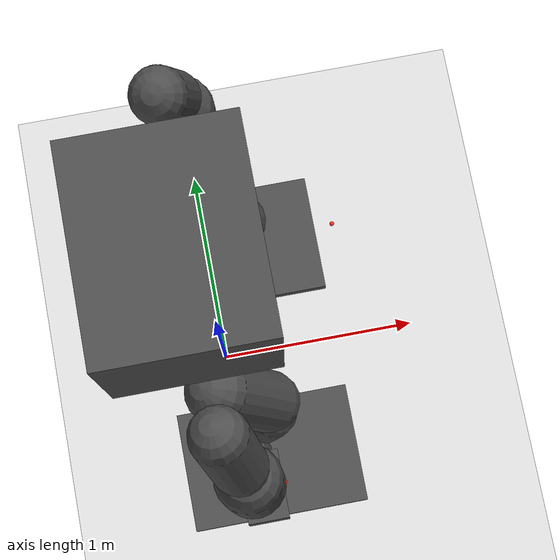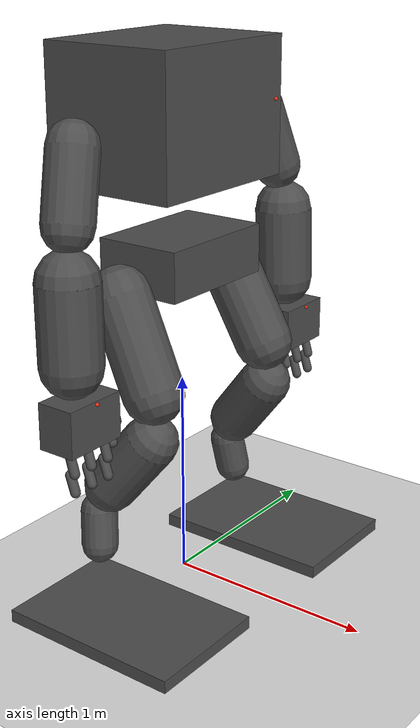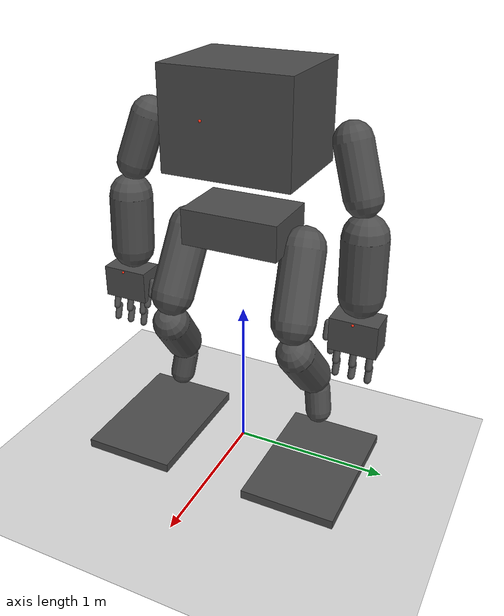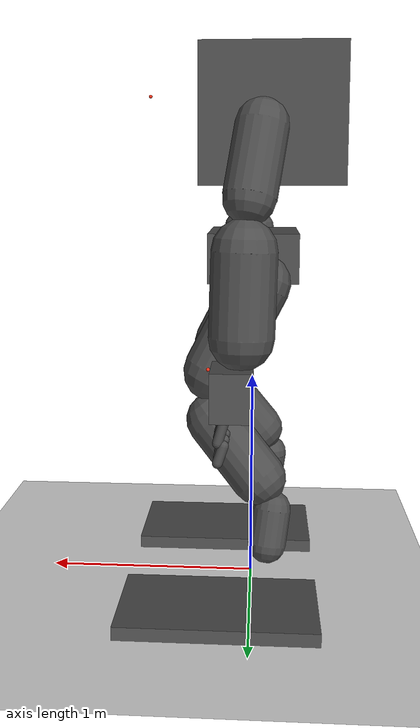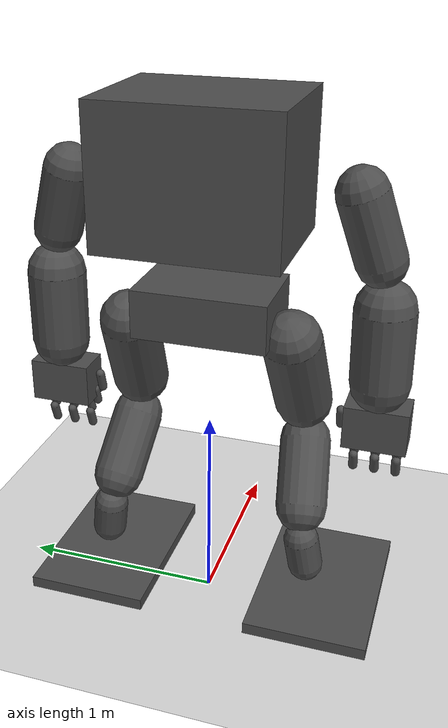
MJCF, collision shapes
<mujoco model="gorilla_layout_b">
  <compiler angle="radian" autolimits="true" inertiafromgeom="false" meshdir="assets" />
  <option timestep=".002" gravity="0 0 -9.81" integrator="implicitfast" iterations="100" tolerance="1e-10" />
  <default>
    <joint limited="true" damping="2" armature="0" />
    <geom friction=".7 .005 .0001" condim="3" solref=".02 1" solimp=".9 .95 .001" />
  </default>
  <asset>
    <mesh name="ivory_chest_wedge" file="ivory_chest_wedge.obj" />
    <mesh name="ivory_back_carapace" file="ivory_back_carapace.obj" />
    <mesh name="torso_internal_carrier_visual" file="torso_internal_carrier_visual.obj" />
    <mesh name="left_blue_torso_side" file="left_blue_torso_side.obj" />
    <mesh name="left_upper_blue_shoulder_bridge" file="left_upper_blue_shoulder_bridge.obj" />
    <mesh name="left_radiator_gold_frame" file="left_radiator_gold_frame.obj" />
    <mesh name="left_radiator_dark_face" file="left_radiator_dark_face.obj" />
    <mesh name="left_radiator_louver_00" file="left_radiator_louver_00.obj" />
    <mesh name="left_radiator_louver_01" file="left_radiator_louver_01.obj" />
    <mesh name="left_radiator_louver_02" file="left_radiator_louver_02.obj" />
    <mesh name="left_radiator_louver_03" file="left_radiator_louver_03.obj" />
    <mesh name="left_radiator_louver_04" file="left_radiator_louver_04.obj" />
    <mesh name="left_radiator_louver_05" file="left_radiator_louver_05.obj" />
    <mesh name="left_radiator_louver_06" file="left_radiator_louver_06.obj" />
    <mesh name="left_radiator_louver_07" file="left_radiator_louver_07.obj" />
    <mesh name="left_radiator_louver_08" file="left_radiator_louver_08.obj" />
    <mesh name="left_radiator_louver_09" file="left_radiator_louver_09.obj" />
    <mesh name="right_blue_torso_side" file="right_blue_torso_side.obj" />
    <mesh name="right_upper_blue_shoulder_bridge" file="right_upper_blue_shoulder_bridge.obj" />
    <mesh name="right_radiator_gold_frame" file="right_radiator_gold_frame.obj" />
    <mesh name="right_radiator_dark_face" file="right_radiator_dark_face.obj" />
    <mesh name="right_radiator_louver_00" file="right_radiator_louver_00.obj" />
    <mesh name="right_radiator_louver_01" file="right_radiator_louver_01.obj" />
    <mesh name="right_radiator_louver_02" file="right_radiator_louver_02.obj" />
    <mesh name="right_radiator_louver_03" file="right_radiator_louver_03.obj" />
    <mesh name="right_radiator_louver_04" file="right_radiator_louver_04.obj" />
    <mesh name="right_radiator_louver_05" file="right_radiator_louver_05.obj" />
    <mesh name="right_radiator_louver_06" file="right_radiator_louver_06.obj" />
    <mesh name="right_radiator_louver_07" file="right_radiator_louver_07.obj" />
    <mesh name="right_radiator_louver_08" file="right_radiator_louver_08.obj" />
    <mesh name="right_radiator_louver_09" file="right_radiator_louver_09.obj" />
    <mesh name="central_amber_light_rim" file="central_amber_light_rim.obj" />
    <mesh name="central_amber_light" file="central_amber_light.obj" />
    <mesh name="blue_back_service_panel" file="blue_back_service_panel.obj" />
    <mesh name="back_service_latch" file="back_service_latch.obj" />
    <mesh name="back_fastener_n0p125_2p216" file="back_fastener_n0p125_2p216.obj" />
    <mesh name="back_fastener_n0p125_2p487" file="back_fastener_n0p125_2p487.obj" />
    <mesh name="back_fastener_0p125_2p216" file="back_fastener_0p125_2p216.obj" />
    <mesh name="back_fastener_0p125_2p487" file="back_fastener_0p125_2p487.obj" />
    <mesh name="pelvis_dark_carrier" file="pelvis_dark_carrier.obj" />
    <mesh name="saffron_front_pelvis" file="saffron_front_pelvis.obj" />
    <mesh name="pelvis_small_black_latch" file="pelvis_small_black_latch.obj" />
    <mesh name="rear_saffron_pelvis_band" file="rear_saffron_pelvis_band.obj" />
    <mesh name="rear_ivory_sacral_guard" file="rear_ivory_sacral_guard.obj" />
    <mesh name="left_shoulder_housing" file="left_shoulder_housing.obj" />
    <mesh name="left_shoulder_rim_right" file="left_shoulder_rim_right.obj" />
    <mesh name="left_shoulder_rim_left" file="left_shoulder_rim_left.obj" />
    <mesh name="left_ivory_upper_arm" file="left_ivory_upper_arm.obj" />
    <mesh name="left_blue_outer_deltoid" file="left_blue_outer_deltoid.obj" />
    <mesh name="left_deltoid_gold_mark" file="left_deltoid_gold_mark.obj" />
    <mesh name="left_elbow_housing" file="left_elbow_housing.obj" />
    <mesh name="left_elbow_rim_right" file="left_elbow_rim_right.obj" />
    <mesh name="left_elbow_rim_left" file="left_elbow_rim_left.obj" />
    <mesh name="left_blue_forearm" file="left_blue_forearm.obj" />
    <mesh name="left_forearm_small_gold_mark" file="left_forearm_small_gold_mark.obj" />
    <mesh name="left_wrist_housing" file="left_wrist_housing.obj" />
    <mesh name="left_wrist_rim_right" file="left_wrist_rim_right.obj" />
    <mesh name="left_wrist_rim_left" file="left_wrist_rim_left.obj" />
    <mesh name="left_ivory_palm" file="left_ivory_palm.obj" />
    <mesh name="left_finger_1_proximal" file="left_finger_1_proximal.obj" />
    <mesh name="left_finger_1_ivory_pad" file="left_finger_1_ivory_pad.obj" />
    <mesh name="left_finger_1_distal" file="left_finger_1_distal.obj" />
    <mesh name="left_finger_2_proximal" file="left_finger_2_proximal.obj" />
    <mesh name="left_finger_2_ivory_pad" file="left_finger_2_ivory_pad.obj" />
    <mesh name="left_finger_2_distal" file="left_finger_2_distal.obj" />
    <mesh name="left_finger_3_proximal" file="left_finger_3_proximal.obj" />
    <mesh name="left_finger_3_ivory_pad" file="left_finger_3_ivory_pad.obj" />
    <mesh name="left_finger_3_distal" file="left_finger_3_distal.obj" />
    <mesh name="left_thumb_proximal" file="left_thumb_proximal.obj" />
    <mesh name="left_thumb_distal" file="left_thumb_distal.obj" />
    <mesh name="left_hip_housing" file="left_hip_housing.obj" />
    <mesh name="left_hip_rim_right" file="left_hip_rim_right.obj" />
    <mesh name="left_hip_rim_left" file="left_hip_rim_left.obj" />
    <mesh name="left_blue_thigh" file="left_blue_thigh.obj" />
    <mesh name="left_orange_knee_guard" file="left_orange_knee_guard.obj" />
    <mesh name="left_knee_housing" file="left_knee_housing.obj" />
    <mesh name="left_knee_rim_right" file="left_knee_rim_right.obj" />
    <mesh name="left_knee_rim_left" file="left_knee_rim_left.obj" />
    <mesh name="left_blue_middle_shank" file="left_blue_middle_shank.obj" />
    <mesh name="left_fold_housing" file="left_fold_housing.obj" />
    <mesh name="left_fold_rim_right" file="left_fold_rim_right.obj" />
    <mesh name="left_fold_rim_left" file="left_fold_rim_left.obj" />
    <mesh name="left_gray_distal_carrier" file="left_gray_distal_carrier.obj" />
    <mesh name="left_blue_distal_front_guard" file="left_blue_distal_front_guard.obj" />
    <mesh name="left_ankle_housing" file="left_ankle_housing.obj" />
    <mesh name="left_ankle_rim_right" file="left_ankle_rim_right.obj" />
    <mesh name="left_ankle_rim_left" file="left_ankle_rim_left.obj" />
    <mesh name="left_dark_sole" file="left_dark_sole.obj" />
    <mesh name="left_ivory_foot_upper" file="left_ivory_foot_upper.obj" />
    <mesh name="left_dark_rear_heel" file="left_dark_rear_heel.obj" />
    <mesh name="left_ivory_ankle_inst_ep" file="left_ivory_ankle_inst_ep.obj" />
    <mesh name="right_shoulder_housing" file="right_shoulder_housing.obj" />
    <mesh name="right_shoulder_rim_right" file="right_shoulder_rim_right.obj" />
    <mesh name="right_shoulder_rim_left" file="right_shoulder_rim_left.obj" />
    <mesh name="right_ivory_upper_arm" file="right_ivory_upper_arm.obj" />
    <mesh name="right_blue_outer_deltoid" file="right_blue_outer_deltoid.obj" />
    <mesh name="right_deltoid_gold_mark" file="right_deltoid_gold_mark.obj" />
    <mesh name="right_elbow_housing" file="right_elbow_housing.obj" />
    <mesh name="right_elbow_rim_right" file="right_elbow_rim_right.obj" />
    <mesh name="right_elbow_rim_left" file="right_elbow_rim_left.obj" />
    <mesh name="right_blue_forearm" file="right_blue_forearm.obj" />
    <mesh name="right_forearm_small_gold_mark" file="right_forearm_small_gold_mark.obj" />
    <mesh name="right_wrist_housing" file="right_wrist_housing.obj" />
    <mesh name="right_wrist_rim_right" file="right_wrist_rim_right.obj" />
    <mesh name="right_wrist_rim_left" file="right_wrist_rim_left.obj" />
    <mesh name="right_ivory_palm" file="right_ivory_palm.obj" />
    <mesh name="right_finger_1_proximal" file="right_finger_1_proximal.obj" />
    <mesh name="right_finger_1_ivory_pad" file="right_finger_1_ivory_pad.obj" />
    <mesh name="right_finger_1_distal" file="right_finger_1_distal.obj" />
    <mesh name="right_finger_2_proximal" file="right_finger_2_proximal.obj" />
    <mesh name="right_finger_2_ivory_pad" file="right_finger_2_ivory_pad.obj" />
    <mesh name="right_finger_2_distal" file="right_finger_2_distal.obj" />
    <mesh name="right_finger_3_proximal" file="right_finger_3_proximal.obj" />
    <mesh name="right_finger_3_ivory_pad" file="right_finger_3_ivory_pad.obj" />
    <mesh name="right_finger_3_distal" file="right_finger_3_distal.obj" />
    <mesh name="right_thumb_proximal" file="right_thumb_proximal.obj" />
    <mesh name="right_thumb_distal" file="right_thumb_distal.obj" />
    <mesh name="right_hip_housing" file="right_hip_housing.obj" />
    <mesh name="right_hip_rim_right" file="right_hip_rim_right.obj" />
    <mesh name="right_hip_rim_left" file="right_hip_rim_left.obj" />
    <mesh name="right_blue_thigh" file="right_blue_thigh.obj" />
    <mesh name="right_orange_knee_guard" file="right_orange_knee_guard.obj" />
    <mesh name="right_knee_housing" file="right_knee_housing.obj" />
    <mesh name="right_knee_rim_right" file="right_knee_rim_right.obj" />
    <mesh name="right_knee_rim_left" file="right_knee_rim_left.obj" />
    <mesh name="right_blue_middle_shank" file="right_blue_middle_shank.obj" />
    <mesh name="right_fold_housing" file="right_fold_housing.obj" />
    <mesh name="right_fold_rim_right" file="right_fold_rim_right.obj" />
    <mesh name="right_fold_rim_left" file="right_fold_rim_left.obj" />
    <mesh name="right_gray_distal_carrier" file="right_gray_distal_carrier.obj" />
    <mesh name="right_blue_distal_front_guard" file="right_blue_distal_front_guard.obj" />
    <mesh name="right_ankle_housing" file="right_ankle_housing.obj" />
    <mesh name="right_ankle_rim_right" file="right_ankle_rim_right.obj" />
    <mesh name="right_ankle_rim_left" file="right_ankle_rim_left.obj" />
    <mesh name="right_dark_sole" file="right_dark_sole.obj" />
    <mesh name="right_ivory_foot_upper" file="right_ivory_foot_upper.obj" />
    <mesh name="right_dark_rear_heel" file="right_dark_rear_heel.obj" />
    <mesh name="right_ivory_ankle_inst_ep" file="right_ivory_ankle_inst_ep.obj" />
  </asset>
  <worldbody>
    <geom name="ground" type="plane" size="8 8 .1" rgba=".86 .86 .86 1" />
    <body name="pelvis" pos="0 0 1.6">
      <freejoint name="floating_root" />
      <body name="waist_yaw_link" pos="0 0 0.14">
        <joint name="waist_yaw" type="hinge" axis="0 0 1" range="-0.6 0.6" />
        <body name="waist_pitch_link" pos="0 0 0">
          <joint name="waist_pitch" type="hinge" axis="0 1 0" range="-0.35 0.55" />
          <body name="torso" pos="0 0 0">
            <joint name="waist_roll" type="hinge" axis="1 0 0" range="-0.25 0.25" />
            <body name="left_shoulder_pitch_link" pos="-0.05 0.62 0.55">
              <joint name="left_shoulder_pitch" type="hinge" axis="0 1 0" range="-2 1.2" />
              <body name="left_shoulder_roll_link" pos="0 0 0">
                <joint name="left_shoulder_roll" type="hinge" axis="1 0 0" range="-1.2 1.2" />
                <body name="left_upper_arm" pos="0 0 0">
                  <joint name="left_shoulder_yaw" type="hinge" axis="0 0 1" range="-1.2 1.2" />
                  <body name="left_forearm" pos="0.08 0.16 -0.5">
                    <joint name="left_elbow_pitch" type="hinge" axis="0 1 0" range="-1.5 1.1" />
                    <body name="left_wrist_yaw_link" pos="0.015 0.01 -0.6">
                      <joint name="left_wrist_yaw" type="hinge" axis="0 0 1" range="-1 1" />
                      <body name="left_wrist_pitch_link" pos="0 0 0">
                        <joint name="left_wrist_pitch" type="hinge" axis="0 1 0" range="-0.8 0.8" />
                        <body name="left_palm" pos="0 0 0">
                          <joint name="left_wrist_roll" type="hinge" axis="1 0 0" range="-0.8 0.8" />
                          <body name="left_finger_1_proximal_link" pos="0.065 -0.102 -0.22">
                            <joint name="left_finger_1_proximal" type="hinge" axis="0 1 0" range="0 1.15" />
                            <body name="left_finger_1_distal_link" pos="0 0 -0.095">
                              <joint name="left_finger_1_distal" type="hinge" axis="0 1 0" range="0 1.3" />
                              <inertial pos="0.00231999579893 2.58126853225e-13 -0.00572265643048" mass="0.957426961802" fullinertia="0.00103485478946 0.000926294985518 0.000864059705223 2.26295271157e-08 8.28595001484e-05 9.17411939302e-09" />
                              <geom name="left_finger_1_distal_visual" type="mesh" mesh="left_finger_1_distal" rgba="0.045 0.052 0.057 1" contype="0" conaffinity="0" group="2" />
                              <geom name="left_finger_1_distal_contact" type="capsule" fromto="0 0 0 0.025 0 -0.075" size="0.022" group="3" rgba=".3 .3 .3 .2" />
                            </body>
                            <inertial pos="0.00309843222078 0 -0.0119961868807" mass="1.09885301901" fullinertia="0.0015110653078 0.00146138534086 0.00105790478705 2.26151211594e-08 0.00010555935221 -6.93889390391e-18" />
                            <geom name="left_finger_1_proximal_visual" type="mesh" mesh="left_finger_1_proximal" rgba="0.045 0.052 0.057 1" contype="0" conaffinity="0" group="2" />
                            <geom name="left_finger_1_ivory_pad_visual" type="mesh" mesh="left_finger_1_ivory_pad" rgba="0.88 0.845 0.735 1" contype="0" conaffinity="0" group="2" />
                            <geom name="left_finger_1_proximal_contact" type="capsule" fromto="0 0 0 0.025 0 -0.085" size="0.022" group="3" rgba=".3 .3 .3 .2" />
                          </body>
                          <body name="left_finger_2_proximal_link" pos="0.065 0 -0.22">
                            <joint name="left_finger_2_proximal" type="hinge" axis="0 1 0" range="0 1.15" />
                            <body name="left_finger_2_distal_link" pos="0 0 -0.095">
                              <joint name="left_finger_2_distal" type="hinge" axis="0 1 0" range="0 1.3" />
                              <inertial pos="0.00231999579893 2.58126853225e-13 -0.00572265643048" mass="0.957426961802" fullinertia="0.00103485478946 0.000926294985518 0.000864059705223 2.26295271263e-08 8.28595001484e-05 9.17411932312e-09" />
                              <geom name="left_finger_2_distal_visual" type="mesh" mesh="left_finger_2_distal" rgba="0.045 0.052 0.057 1" contype="0" conaffinity="0" group="2" />
                              <geom name="left_finger_2_distal_contact" type="capsule" fromto="0 0 0 0.025 0 -0.075" size="0.022" group="3" rgba=".3 .3 .3 .2" />
                            </body>
                            <inertial pos="0.00309843222078 2.22044604925e-16 -0.0119961868807" mass="1.09885301901" fullinertia="0.0015110653078 0.00146138534086 0.00105790478705 2.26151211655e-08 0.00010555935221 9.87132406231e-17" />
                            <geom name="left_finger_2_proximal_visual" type="mesh" mesh="left_finger_2_proximal" rgba="0.045 0.052 0.057 1" contype="0" conaffinity="0" group="2" />
                            <geom name="left_finger_2_ivory_pad_visual" type="mesh" mesh="left_finger_2_ivory_pad" rgba="0.88 0.845 0.735 1" contype="0" conaffinity="0" group="2" />
                            <geom name="left_finger_2_proximal_contact" type="capsule" fromto="0 0 0 0.025 0 -0.085" size="0.022" group="3" rgba=".3 .3 .3 .2" />
                          </body>
                          <body name="left_finger_3_proximal_link" pos="0.065 0.102 -0.22">
                            <joint name="left_finger_3_proximal" type="hinge" axis="0 1 0" range="0 1.15" />
                            <body name="left_finger_3_distal_link" pos="0 0 -0.095">
                              <joint name="left_finger_3_distal" type="hinge" axis="0 1 0" range="0 1.3" />
                              <inertial pos="0.00231999579893 2.58015830923e-13 -0.00572265643048" mass="0.957426961802" fullinertia="0.00103485478946 0.000926294985518 0.000864059705223 2.2629527125e-08 8.28595001484e-05 9.17411936374e-09" />
                              <geom name="left_finger_3_distal_visual" type="mesh" mesh="left_finger_3_distal" rgba="0.045 0.052 0.057 1" contype="0" conaffinity="0" group="2" />
                              <geom name="left_finger_3_distal_contact" type="capsule" fromto="0 0 0 0.025 0 -0.075" size="0.022" group="3" rgba=".3 .3 .3 .2" />
                            </body>
                            <inertial pos="0.00309843222078 -1.11022302463e-16 -0.0119961868807" mass="1.09885301901" fullinertia="0.0015110653078 0.00146138534086 0.00105790478705 2.26151211548e-08 0.00010555935221 5.338020037e-17" />
                            <geom name="left_finger_3_proximal_visual" type="mesh" mesh="left_finger_3_proximal" rgba="0.045 0.052 0.057 1" contype="0" conaffinity="0" group="2" />
                            <geom name="left_finger_3_ivory_pad_visual" type="mesh" mesh="left_finger_3_ivory_pad" rgba="0.88 0.845 0.735 1" contype="0" conaffinity="0" group="2" />
                            <geom name="left_finger_3_proximal_contact" type="capsule" fromto="0 0 0 0.025 0 -0.085" size="0.022" group="3" rgba=".3 .3 .3 .2" />
                          </body>
                          <body name="left_thumb_proximal_link" pos="0.055 -0.175 -0.08">
                            <joint name="left_thumb_proximal" type="hinge" axis="1 0 0" range="0 1.15" />
                            <body name="left_thumb_distal_link" pos="0.005 0.035 -0.095">
                              <joint name="left_thumb_distal" type="hinge" axis="1 0 0" range="0 1.3" />
                              <inertial pos="0.00290447568372 0.00191083931174 -0.0051974827753" mass="0.958510415118" fullinertia="0.00087620990969 0.0010585787342 0.00090645724758 -3.56666172401e-05 9.35933702642e-05 6.3855388656e-05" />
                              <geom name="left_thumb_distal_visual" type="mesh" mesh="left_thumb_distal" rgba="0.045 0.052 0.057 1" contype="0" conaffinity="0" group="2" />
                              <geom name="left_thumb_distal_contact" type="capsule" fromto="0 0 0 0.025 0 -0.075" size="0.022" group="3" rgba=".3 .3 .3 .2" />
                            </body>
                            <inertial pos="0.00053829878165 0.00376809151138 -0.0102276767517" mass="1.04401803612" fullinertia="0.00138381733589 0.00148901278412 0.00106770278982 -9.44167494933e-06 2.43620240523e-05 0.000179568495008" />
                            <geom name="left_thumb_proximal_visual" type="mesh" mesh="left_thumb_proximal" rgba="0.045 0.052 0.057 1" contype="0" conaffinity="0" group="2" />
                            <geom name="left_thumb_proximal_contact" type="capsule" fromto="0 0 0 0.025 0 -0.085" size="0.022" group="3" rgba=".3 .3 .3 .2" />
                          </body>
                          <inertial pos="0.0126077654672 -1.11022302463e-16 -0.0421086297988" mass="9.5345553695" fullinertia="0.0943717346322 0.0802592714939 0.0633885595798 -2.4155877925e-06 0.00899019246205 -9.39812312352e-16" />
                          <geom name="left_wrist_housing_visual" type="mesh" mesh="left_wrist_housing" rgba="0.17 0.18 0.18 1" contype="0" conaffinity="0" group="2" />
                          <geom name="left_wrist_rim_right_visual" type="mesh" mesh="left_wrist_rim_right" rgba="1 0.51 0.025 1" contype="0" conaffinity="0" group="2" />
                          <geom name="left_wrist_rim_left_visual" type="mesh" mesh="left_wrist_rim_left" rgba="1 0.51 0.025 1" contype="0" conaffinity="0" group="2" />
                          <geom name="left_ivory_palm_visual" type="mesh" mesh="left_ivory_palm" rgba="0.88 0.845 0.735 1" contype="0" conaffinity="0" group="2" />
                          <geom name="left_palm_contact" type="box" pos="0.035 0 -0.11" size="0.09 0.15 0.105" group="3" rgba=".3 .3 .3 .2" />
                          <site name="left_wrist_rgbd_mount" pos="0.135 0 -0.015" size=".008" rgba="1 .2 .1 1" />
                        </body>
                        <inertial pos="-6.93889390391e-18 0 -2.22044604925e-16" mass="6.1" fullinertia="0.01964390625 0.0207590625 0.01964390625 0 -9.39853812861e-33 0" />
                      </body>
                      <inertial pos="-6.93889390391e-18 0 -2.22044604925e-16" mass="6.1" fullinertia="0.01964390625 0.01964390625 0.0207590625 0 -9.39853812861e-33 0" />
                    </body>
                    <inertial pos="0.00298280776583 0.00917999578177 -0.107176724624" mass="22.2486199756" fullinertia="0.805593418132 0.804776526039 0.259228840677 -0.00142021814287 0.0143723643648 0.0422497088924" />
                    <geom name="left_elbow_housing_visual" type="mesh" mesh="left_elbow_housing" rgba="0.17 0.18 0.18 1" contype="0" conaffinity="0" group="2" />
                    <geom name="left_elbow_rim_right_visual" type="mesh" mesh="left_elbow_rim_right" rgba="1 0.51 0.025 1" contype="0" conaffinity="0" group="2" />
                    <geom name="left_elbow_rim_left_visual" type="mesh" mesh="left_elbow_rim_left" rgba="1 0.51 0.025 1" contype="0" conaffinity="0" group="2" />
                    <geom name="left_blue_forearm_visual" type="mesh" mesh="left_blue_forearm" rgba="0.008 0.4 0.76 1" contype="0" conaffinity="0" group="2" />
                    <geom name="left_forearm_small_gold_mark_visual" type="mesh" mesh="left_forearm_small_gold_mark" rgba="1 0.51 0.025 1" contype="0" conaffinity="0" group="2" />
                    <geom name="left_forearm_contact" type="capsule" fromto="0.003 0.002 -0.12 0.012 0.008 -0.48" size="0.14" group="3" rgba=".3 .3 .3 .2" />
                  </body>
                  <inertial pos="0.00605261947207 0.0603525166354 -0.108315018843" mass="15.7573653879" fullinertia="0.541312196851 0.514236580759 0.221891926532 -0.00527112223704 0.0513257063007 0.0860762579977" />
                  <geom name="left_shoulder_housing_visual" type="mesh" mesh="left_shoulder_housing" rgba="0.17 0.18 0.18 1" contype="0" conaffinity="0" group="2" />
                  <geom name="left_shoulder_rim_right_visual" type="mesh" mesh="left_shoulder_rim_right" rgba="1 0.51 0.025 1" contype="0" conaffinity="0" group="2" />
                  <geom name="left_shoulder_rim_left_visual" type="mesh" mesh="left_shoulder_rim_left" rgba="1 0.51 0.025 1" contype="0" conaffinity="0" group="2" />
                  <geom name="left_ivory_upper_arm_visual" type="mesh" mesh="left_ivory_upper_arm" rgba="0.88 0.845 0.735 1" contype="0" conaffinity="0" group="2" />
                  <geom name="left_blue_outer_deltoid_visual" type="mesh" mesh="left_blue_outer_deltoid" rgba="0.008 0.4 0.76 1" contype="0" conaffinity="0" group="2" />
                  <geom name="left_deltoid_gold_mark_visual" type="mesh" mesh="left_deltoid_gold_mark" rgba="1 0.51 0.025 1" contype="0" conaffinity="0" group="2" />
                  <geom name="left_upper_arm_contact" type="capsule" fromto="0.016 0.032 -0.1 0.064 0.128 -0.4" size="0.115" group="3" rgba=".3 .3 .3 .2" />
                </body>
                <inertial pos="-6.93889390391e-18 -1.11022302463e-16 0" mass="14.2" fullinertia="0.08591 0.0834545833333 0.0834545833333 -1.09392820841e-32 0 0" />
              </body>
              <inertial pos="-6.93889390391e-18 -1.11022302463e-16 0" mass="14.2" fullinertia="0.0834545833333 0.08591 0.0834545833333 -1.09392820841e-32 0 0" />
            </body>
            <body name="right_shoulder_pitch_link" pos="-0.05 -0.62 0.55">
              <joint name="right_shoulder_pitch" type="hinge" axis="0 1 0" range="-2 1.2" />
              <body name="right_shoulder_roll_link" pos="0 0 0">
                <joint name="right_shoulder_roll" type="hinge" axis="1 0 0" range="-1.2 1.2" />
                <body name="right_upper_arm" pos="0 0 0">
                  <joint name="right_shoulder_yaw" type="hinge" axis="0 0 1" range="-1.2 1.2" />
                  <body name="right_forearm" pos="0.08 -0.16 -0.5">
                    <joint name="right_elbow_pitch" type="hinge" axis="0 1 0" range="-1.5 1.1" />
                    <body name="right_wrist_yaw_link" pos="0.015 -0.01 -0.6">
                      <joint name="right_wrist_yaw" type="hinge" axis="0 0 1" range="-1 1" />
                      <body name="right_wrist_pitch_link" pos="0 0 0">
                        <joint name="right_wrist_pitch" type="hinge" axis="0 1 0" range="-0.8 0.8" />
                        <body name="right_palm" pos="0 0 0">
                          <joint name="right_wrist_roll" type="hinge" axis="1 0 0" range="-0.8 0.8" />
                          <body name="right_finger_1_proximal_link" pos="0.065 0.102 -0.22">
                            <joint name="right_finger_1_proximal" type="hinge" axis="0 1 0" range="0 1.15" />
                            <body name="right_finger_1_distal_link" pos="0 0 -0.095">
                              <joint name="right_finger_1_distal" type="hinge" axis="0 1 0" range="0 1.3" />
                              <inertial pos="0.00231999579893 2.58126853225e-13 -0.00572265643048" mass="0.957426961802" fullinertia="0.00103485478946 0.000926294985518 0.000864059705223 2.2629527125e-08 8.28595001484e-05 9.17411929435e-09" />
                              <geom name="right_finger_1_distal_visual" type="mesh" mesh="right_finger_1_distal" rgba="0.045 0.052 0.057 1" contype="0" conaffinity="0" group="2" />
                              <geom name="right_finger_1_distal_contact" type="capsule" fromto="0 0 0 0.025 0 -0.075" size="0.022" group="3" rgba=".3 .3 .3 .2" />
                            </body>
                            <inertial pos="0.00309843222078 1.11022302463e-16 -0.0119961868807" mass="1.09885301901" fullinertia="0.0015110653078 0.00146138534086 0.00105790478705 2.26151211717e-08 0.00010555935221 4.31132341553e-17" />
                            <geom name="right_finger_1_proximal_visual" type="mesh" mesh="right_finger_1_proximal" rgba="0.045 0.052 0.057 1" contype="0" conaffinity="0" group="2" />
                            <geom name="right_finger_1_ivory_pad_visual" type="mesh" mesh="right_finger_1_ivory_pad" rgba="0.88 0.845 0.735 1" contype="0" conaffinity="0" group="2" />
                            <geom name="right_finger_1_proximal_contact" type="capsule" fromto="0 0 0 0.025 0 -0.085" size="0.022" group="3" rgba=".3 .3 .3 .2" />
                          </body>
                          <body name="right_finger_2_proximal_link" pos="0.065 0 -0.22">
                            <joint name="right_finger_2_proximal" type="hinge" axis="0 1 0" range="0 1.15" />
                            <body name="right_finger_2_distal_link" pos="0 0 -0.095">
                              <joint name="right_finger_2_distal" type="hinge" axis="0 1 0" range="0 1.3" />
                              <inertial pos="0.00231999579893 2.58015830923e-13 -0.00572265643048" mass="0.957426961802" fullinertia="0.00103485478946 0.000926294985518 0.000864059705223 2.26295271231e-08 8.28595001484e-05 9.17411930873e-09" />
                              <geom name="right_finger_2_distal_visual" type="mesh" mesh="right_finger_2_distal" rgba="0.045 0.052 0.057 1" contype="0" conaffinity="0" group="2" />
                              <geom name="right_finger_2_distal_contact" type="capsule" fromto="0 0 0 0.025 0 -0.075" size="0.022" group="3" rgba=".3 .3 .3 .2" />
                            </body>
                            <inertial pos="0.00309843222078 -2.22044604925e-16 -0.0119961868807" mass="1.09885301901" fullinertia="0.0015110653078 0.00146138534086 0.00105790478705 2.26151211671e-08 0.00010555935221 -1.13330963797e-16" />
                            <geom name="right_finger_2_proximal_visual" type="mesh" mesh="right_finger_2_proximal" rgba="0.045 0.052 0.057 1" contype="0" conaffinity="0" group="2" />
                            <geom name="right_finger_2_ivory_pad_visual" type="mesh" mesh="right_finger_2_ivory_pad" rgba="0.88 0.845 0.735 1" contype="0" conaffinity="0" group="2" />
                            <geom name="right_finger_2_proximal_contact" type="capsule" fromto="0 0 0 0.025 0 -0.085" size="0.022" group="3" rgba=".3 .3 .3 .2" />
                          </body>
                          <body name="right_finger_3_proximal_link" pos="0.065 -0.102 -0.22">
                            <joint name="right_finger_3_proximal" type="hinge" axis="0 1 0" range="0 1.15" />
                            <body name="right_finger_3_distal_link" pos="0 0 -0.095">
                              <joint name="right_finger_3_distal" type="hinge" axis="0 1 0" range="0 1.3" />
                              <inertial pos="0.00231999579893 2.58237875528e-13 -0.00572265643048" mass="0.957426961802" fullinertia="0.00103485478946 0.000926294985518 0.000864059705223 2.26295271103e-08 8.28595001484e-05 9.17411935189e-09" />
                              <geom name="right_finger_3_distal_visual" type="mesh" mesh="right_finger_3_distal" rgba="0.045 0.052 0.057 1" contype="0" conaffinity="0" group="2" />
                              <geom name="right_finger_3_distal_contact" type="capsule" fromto="0 0 0 0.025 0 -0.075" size="0.022" group="3" rgba=".3 .3 .3 .2" />
                            </body>
                            <inertial pos="0.00309843222078 2.22044604925e-16 -0.0119961868807" mass="1.09885301901" fullinertia="0.0015110653078 0.00146138534086 0.00105790478705 2.26151211604e-08 0.00010555935221 -8.33555820834e-17" />
                            <geom name="right_finger_3_proximal_visual" type="mesh" mesh="right_finger_3_proximal" rgba="0.045 0.052 0.057 1" contype="0" conaffinity="0" group="2" />
                            <geom name="right_finger_3_ivory_pad_visual" type="mesh" mesh="right_finger_3_ivory_pad" rgba="0.88 0.845 0.735 1" contype="0" conaffinity="0" group="2" />
                            <geom name="right_finger_3_proximal_contact" type="capsule" fromto="0 0 0 0.025 0 -0.085" size="0.022" group="3" rgba=".3 .3 .3 .2" />
                          </body>
                          <body name="right_thumb_proximal_link" pos="0.055 0.175 -0.08">
                            <joint name="right_thumb_proximal" type="hinge" axis="-1 0 0" range="0 1.15" />
                            <body name="right_thumb_distal_link" pos="0.005 -0.035 -0.095">
                              <joint name="right_thumb_distal" type="hinge" axis="-1 0 0" range="0 1.3" />
                              <inertial pos="0.00290447568791 -0.00191083931449 -0.00519748278132" mass="0.958510415127" fullinertia="0.000876218153811 0.00105857873535 0.000906449004919 3.56929433874e-05 9.35882986804e-05 -6.38406774093e-05" />
                              <geom name="right_thumb_distal_visual" type="mesh" mesh="right_thumb_distal" rgba="0.045 0.052 0.057 1" contype="0" conaffinity="0" group="2" />
                              <geom name="right_thumb_distal_contact" type="capsule" fromto="0 0 0 0.025 0 -0.075" size="0.022" group="3" rgba=".3 .3 .3 .2" />
                            </body>
                            <inertial pos="0.00053829877896 -0.00376809150081 -0.0102276767247" mass="1.04401803613" fullinertia="0.00138381804824 0.00148901277907 0.00106770207196 9.4602236373e-06 2.43552276022e-05 -0.000179567516752" />
                            <geom name="right_thumb_proximal_visual" type="mesh" mesh="right_thumb_proximal" rgba="0.045 0.052 0.057 1" contype="0" conaffinity="0" group="2" />
                            <geom name="right_thumb_proximal_contact" type="capsule" fromto="0 0 0 0.025 0 -0.085" size="0.022" group="3" rgba=".3 .3 .3 .2" />
                          </body>
                          <inertial pos="0.0126077654672 2.22044604925e-16 -0.0421086297988" mass="9.5345553695" fullinertia="0.0943717346322 0.0802592714939 0.0633885595798 -2.41558779251e-06 0.00899019246205 7.34979004978e-16" />
                          <geom name="right_wrist_housing_visual" type="mesh" mesh="right_wrist_housing" rgba="0.17 0.18 0.18 1" contype="0" conaffinity="0" group="2" />
                          <geom name="right_wrist_rim_right_visual" type="mesh" mesh="right_wrist_rim_right" rgba="1 0.51 0.025 1" contype="0" conaffinity="0" group="2" />
                          <geom name="right_wrist_rim_left_visual" type="mesh" mesh="right_wrist_rim_left" rgba="1 0.51 0.025 1" contype="0" conaffinity="0" group="2" />
                          <geom name="right_ivory_palm_visual" type="mesh" mesh="right_ivory_palm" rgba="0.88 0.845 0.735 1" contype="0" conaffinity="0" group="2" />
                          <geom name="right_palm_contact" type="box" pos="0.035 0 -0.11" size="0.09 0.15 0.105" group="3" rgba=".3 .3 .3 .2" />
                          <site name="right_wrist_rgbd_mount" pos="0.135 0 -0.015" size=".008" rgba="1 .2 .1 1" />
                        </body>
                        <inertial pos="-6.93889390391e-18 0 -2.22044604925e-16" mass="6.1" fullinertia="0.01964390625 0.0207590625 0.01964390625 0 -9.39853812861e-33 0" />
                      </body>
                      <inertial pos="-6.93889390391e-18 0 -2.22044604925e-16" mass="6.1" fullinertia="0.01964390625 0.01964390625 0.0207590625 0 -9.39853812861e-33 0" />
                    </body>
                    <inertial pos="0.00298280776422 -0.00917999578213 -0.10717672463" mass="22.2486199755" fullinertia="0.805593383417 0.804776526181 0.259228875537 0.00137836438304 0.0143730610612 -0.0422507552321" />
                    <geom name="right_elbow_housing_visual" type="mesh" mesh="right_elbow_housing" rgba="0.17 0.18 0.18 1" contype="0" conaffinity="0" group="2" />
                    <geom name="right_elbow_rim_right_visual" type="mesh" mesh="right_elbow_rim_right" rgba="1 0.51 0.025 1" contype="0" conaffinity="0" group="2" />
                    <geom name="right_elbow_rim_left_visual" type="mesh" mesh="right_elbow_rim_left" rgba="1 0.51 0.025 1" contype="0" conaffinity="0" group="2" />
                    <geom name="right_blue_forearm_visual" type="mesh" mesh="right_blue_forearm" rgba="0.008 0.4 0.76 1" contype="0" conaffinity="0" group="2" />
                    <geom name="right_forearm_small_gold_mark_visual" type="mesh" mesh="right_forearm_small_gold_mark" rgba="1 0.51 0.025 1" contype="0" conaffinity="0" group="2" />
                    <geom name="right_forearm_contact" type="capsule" fromto="0.003 -0.002 -0.12 0.012 -0.008 -0.48" size="0.14" group="3" rgba=".3 .3 .3 .2" />
                  </body>
                  <inertial pos="0.00605271819759 -0.0603511015858 -0.108314783974" mass="15.7573715862" fullinertia="0.541311715574 0.514237166529 0.221890814333 0.00523740108276 0.051321472548 -0.0860820046883" />
                  <geom name="right_shoulder_housing_visual" type="mesh" mesh="right_shoulder_housing" rgba="0.17 0.18 0.18 1" contype="0" conaffinity="0" group="2" />
                  <geom name="right_shoulder_rim_right_visual" type="mesh" mesh="right_shoulder_rim_right" rgba="1 0.51 0.025 1" contype="0" conaffinity="0" group="2" />
                  <geom name="right_shoulder_rim_left_visual" type="mesh" mesh="right_shoulder_rim_left" rgba="1 0.51 0.025 1" contype="0" conaffinity="0" group="2" />
                  <geom name="right_ivory_upper_arm_visual" type="mesh" mesh="right_ivory_upper_arm" rgba="0.88 0.845 0.735 1" contype="0" conaffinity="0" group="2" />
                  <geom name="right_blue_outer_deltoid_visual" type="mesh" mesh="right_blue_outer_deltoid" rgba="0.008 0.4 0.76 1" contype="0" conaffinity="0" group="2" />
                  <geom name="right_deltoid_gold_mark_visual" type="mesh" mesh="right_deltoid_gold_mark" rgba="1 0.51 0.025 1" contype="0" conaffinity="0" group="2" />
                  <geom name="right_upper_arm_contact" type="capsule" fromto="0.016 -0.032 -0.1 0.064 -0.128 -0.4" size="0.115" group="3" rgba=".3 .3 .3 .2" />
                </body>
                <inertial pos="-6.93889390391e-18 1.11022302463e-16 0" mass="14.2" fullinertia="0.08591 0.0834545833333 0.0834545833333 1.09392820841e-32 0 0" />
              </body>
              <inertial pos="-6.93889390391e-18 1.11022302463e-16 0" mass="14.2" fullinertia="0.0834545833333 0.08591 0.0834545833333 1.09392820841e-32 0 0" />
            </body>
            <inertial pos="5.9235837767e-05 -0.0110965358388 0.389990787588" mass="135.15875789" fullinertia="20.765220559 17.0491082986 14.9753362202 -0.180516666074 0.731811281798 -0.120154277722" />
            <geom name="ivory_chest_wedge_visual" type="mesh" mesh="ivory_chest_wedge" rgba="0.88 0.845 0.735 1" contype="0" conaffinity="0" group="2" />
            <geom name="ivory_back_carapace_visual" type="mesh" mesh="ivory_back_carapace" rgba="0.88 0.845 0.735 1" contype="0" conaffinity="0" group="2" />
            <geom name="torso_internal_carrier_visual_visual" type="mesh" mesh="torso_internal_carrier_visual" rgba="0.045 0.052 0.057 1" contype="0" conaffinity="0" group="2" />
            <geom name="left_blue_torso_side_visual" type="mesh" mesh="left_blue_torso_side" rgba="0.008 0.4 0.76 1" contype="0" conaffinity="0" group="2" />
            <geom name="left_upper_blue_shoulder_bridge_visual" type="mesh" mesh="left_upper_blue_shoulder_bridge" rgba="0.008 0.4 0.76 1" contype="0" conaffinity="0" group="2" />
            <geom name="left_radiator_gold_frame_visual" type="mesh" mesh="left_radiator_gold_frame" rgba="1 0.51 0.025 1" contype="0" conaffinity="0" group="2" />
            <geom name="left_radiator_dark_face_visual" type="mesh" mesh="left_radiator_dark_face" rgba="0.009 0.012 0.015 1" contype="0" conaffinity="0" group="2" />
            <geom name="left_radiator_louver_00_visual" type="mesh" mesh="left_radiator_louver_00" rgba="0.17 0.18 0.18 1" contype="0" conaffinity="0" group="2" />
            <geom name="left_radiator_louver_01_visual" type="mesh" mesh="left_radiator_louver_01" rgba="0.17 0.18 0.18 1" contype="0" conaffinity="0" group="2" />
            <geom name="left_radiator_louver_02_visual" type="mesh" mesh="left_radiator_louver_02" rgba="0.17 0.18 0.18 1" contype="0" conaffinity="0" group="2" />
            <geom name="left_radiator_louver_03_visual" type="mesh" mesh="left_radiator_louver_03" rgba="0.17 0.18 0.18 1" contype="0" conaffinity="0" group="2" />
            <geom name="left_radiator_louver_04_visual" type="mesh" mesh="left_radiator_louver_04" rgba="0.17 0.18 0.18 1" contype="0" conaffinity="0" group="2" />
            <geom name="left_radiator_louver_05_visual" type="mesh" mesh="left_radiator_louver_05" rgba="0.17 0.18 0.18 1" contype="0" conaffinity="0" group="2" />
            <geom name="left_radiator_louver_06_visual" type="mesh" mesh="left_radiator_louver_06" rgba="0.17 0.18 0.18 1" contype="0" conaffinity="0" group="2" />
            <geom name="left_radiator_louver_07_visual" type="mesh" mesh="left_radiator_louver_07" rgba="0.17 0.18 0.18 1" contype="0" conaffinity="0" group="2" />
            <geom name="left_radiator_louver_08_visual" type="mesh" mesh="left_radiator_louver_08" rgba="0.17 0.18 0.18 1" contype="0" conaffinity="0" group="2" />
            <geom name="left_radiator_louver_09_visual" type="mesh" mesh="left_radiator_louver_09" rgba="0.17 0.18 0.18 1" contype="0" conaffinity="0" group="2" />
            <geom name="right_blue_torso_side_visual" type="mesh" mesh="right_blue_torso_side" rgba="0.008 0.4 0.76 1" contype="0" conaffinity="0" group="2" />
            <geom name="right_upper_blue_shoulder_bridge_visual" type="mesh" mesh="right_upper_blue_shoulder_bridge" rgba="0.008 0.4 0.76 1" contype="0" conaffinity="0" group="2" />
            <geom name="right_radiator_gold_frame_visual" type="mesh" mesh="right_radiator_gold_frame" rgba="1 0.51 0.025 1" contype="0" conaffinity="0" group="2" />
            <geom name="right_radiator_dark_face_visual" type="mesh" mesh="right_radiator_dark_face" rgba="0.009 0.012 0.015 1" contype="0" conaffinity="0" group="2" />
            <geom name="right_radiator_louver_00_visual" type="mesh" mesh="right_radiator_louver_00" rgba="0.17 0.18 0.18 1" contype="0" conaffinity="0" group="2" />
            <geom name="right_radiator_louver_01_visual" type="mesh" mesh="right_radiator_louver_01" rgba="0.17 0.18 0.18 1" contype="0" conaffinity="0" group="2" />
            <geom name="right_radiator_louver_02_visual" type="mesh" mesh="right_radiator_louver_02" rgba="0.17 0.18 0.18 1" contype="0" conaffinity="0" group="2" />
            <geom name="right_radiator_louver_03_visual" type="mesh" mesh="right_radiator_louver_03" rgba="0.17 0.18 0.18 1" contype="0" conaffinity="0" group="2" />
            <geom name="right_radiator_louver_04_visual" type="mesh" mesh="right_radiator_louver_04" rgba="0.17 0.18 0.18 1" contype="0" conaffinity="0" group="2" />
            <geom name="right_radiator_louver_05_visual" type="mesh" mesh="right_radiator_louver_05" rgba="0.17 0.18 0.18 1" contype="0" conaffinity="0" group="2" />
            <geom name="right_radiator_louver_06_visual" type="mesh" mesh="right_radiator_louver_06" rgba="0.17 0.18 0.18 1" contype="0" conaffinity="0" group="2" />
            <geom name="right_radiator_louver_07_visual" type="mesh" mesh="right_radiator_louver_07" rgba="0.17 0.18 0.18 1" contype="0" conaffinity="0" group="2" />
            <geom name="right_radiator_louver_08_visual" type="mesh" mesh="right_radiator_louver_08" rgba="0.17 0.18 0.18 1" contype="0" conaffinity="0" group="2" />
            <geom name="right_radiator_louver_09_visual" type="mesh" mesh="right_radiator_louver_09" rgba="0.17 0.18 0.18 1" contype="0" conaffinity="0" group="2" />
            <geom name="central_amber_light_rim_visual" type="mesh" mesh="central_amber_light_rim" rgba="1 0.51 0.025 1" contype="0" conaffinity="0" group="2" />
            <geom name="central_amber_light_visual" type="mesh" mesh="central_amber_light" rgba="1 0.76 0.08 1" contype="0" conaffinity="0" group="2" />
            <geom name="blue_back_service_panel_visual" type="mesh" mesh="blue_back_service_panel" rgba="0.008 0.4 0.76 1" contype="0" conaffinity="0" group="2" />
            <geom name="back_service_latch_visual" type="mesh" mesh="back_service_latch" rgba="0.045 0.052 0.057 1" contype="0" conaffinity="0" group="2" />
            <geom name="back_fastener_n0p125_2p216_visual" type="mesh" mesh="back_fastener_n0p125_2p216" rgba="0.17 0.18 0.18 1" contype="0" conaffinity="0" group="2" />
            <geom name="back_fastener_n0p125_2p487_visual" type="mesh" mesh="back_fastener_n0p125_2p487" rgba="0.17 0.18 0.18 1" contype="0" conaffinity="0" group="2" />
            <geom name="back_fastener_0p125_2p216_visual" type="mesh" mesh="back_fastener_0p125_2p216" rgba="0.17 0.18 0.18 1" contype="0" conaffinity="0" group="2" />
            <geom name="back_fastener_0p125_2p487_visual" type="mesh" mesh="back_fastener_0p125_2p487" rgba="0.17 0.18 0.18 1" contype="0" conaffinity="0" group="2" />
            <geom name="torso_core_contact" type="box" pos="-0.08 0 0.51" size="0.33 0.41 0.315" group="3" rgba=".3 .3 .3 .2" />
            <site name="main_stereo_mount" pos="0.5 0 0.61" size=".008" rgba="1 .2 .1 1" />
          </body>
          <inertial pos="0 0 -2.22044604925e-16" mass="33.9" fullinertia="0.3477575 0.35637375 0.3477575 0 0 0" />
        </body>
        <inertial pos="0 0 0" mass="14.2" fullinertia="0.0834545833333 0.0834545833333 0.08591 0 0 0" />
      </body>
      <body name="left_hip_yaw_link" pos="-0.1 0.38 0.03">
        <joint name="left_hip_yaw" type="hinge" axis="0 0 1" range="-0.6 0.6" />
        <body name="left_hip_roll_link" pos="0 0 0">
          <joint name="left_hip_roll" type="hinge" axis="1 0 0" range="-0.65 0.65" />
          <body name="left_thigh" pos="0 0 0">
            <joint name="left_hip_pitch" type="hinge" axis="0 1 0" range="-1 1" />
            <body name="left_middle_shank" pos="0.34 0.05 -0.665">
              <joint name="left_knee_pitch" type="hinge" axis="0 1 0" range="-1.15 1.15" />
              <body name="left_distal_shank" pos="-0.345 0.06 -0.43">
                <joint name="left_fold_pitch" type="hinge" axis="0 1 0" range="-0.9 0.9" />
                <body name="left_ankle_pitch_link" pos="0.035 0.04 -0.265">
                  <joint name="left_ankle_pitch" type="hinge" axis="0 1 0" range="-0.7 0.7" />
                  <body name="left_foot" pos="0 0 0">
                    <joint name="left_ankle_roll" type="hinge" axis="1 0 0" range="-0.5 0.5" />
                    <inertial pos="0.11513574575 0.0298524208118 -0.128027073879" mass="42.1856519593" fullinertia="1.31683444329 2.57535467845 2.91920063407 -0.0736082752701 0.367655407151 0.0818065499178" />
                    <geom name="left_ankle_housing_visual" type="mesh" mesh="left_ankle_housing" rgba="0.17 0.18 0.18 1" contype="0" conaffinity="0" group="2" />
                    <geom name="left_ankle_rim_right_visual" type="mesh" mesh="left_ankle_rim_right" rgba="1 0.51 0.025 1" contype="0" conaffinity="0" group="2" />
                    <geom name="left_ankle_rim_left_visual" type="mesh" mesh="left_ankle_rim_left" rgba="1 0.51 0.025 1" contype="0" conaffinity="0" group="2" />
                    <geom name="left_dark_sole_visual" type="mesh" mesh="left_dark_sole" rgba="0.045 0.052 0.057 1" contype="0" conaffinity="0" group="2" />
                    <geom name="left_ivory_foot_upper_visual" type="mesh" mesh="left_ivory_foot_upper" rgba="0.88 0.845 0.735 1" contype="0" conaffinity="0" group="2" />
                    <geom name="left_dark_rear_heel_visual" type="mesh" mesh="left_dark_rear_heel" rgba="0.045 0.052 0.057 1" contype="0" conaffinity="0" group="2" />
                    <geom name="left_ivory_ankle_inst_ep_visual" type="mesh" mesh="left_ivory_ankle_inst_ep" rgba="0.88 0.845 0.735 1" contype="0" conaffinity="0" group="2" />
                    <geom name="left_sole_contact" type="box" pos="0.21 0.045 -0.24" size="0.45 0.305 0.03" group="3" rgba=".3 .3 .3 .2" />
                  </body>
                  <inertial pos="0 0 0" mass="14.2" fullinertia="0.0834545833333 0.08591 0.0834545833333 0 0 0" />
                </body>
                <inertial pos="0.0218612323082 0.000827610148673 -0.0253424206093" mass="17.9994186481" fullinertia="0.155283992033 0.185336547145 0.146703495218 -0.00201937062025 0.0386081292272 0.00196820644228" />
                <geom name="left_fold_housing_visual" type="mesh" mesh="left_fold_housing" rgba="0.17 0.18 0.18 1" contype="0" conaffinity="0" group="2" />
                <geom name="left_fold_rim_right_visual" type="mesh" mesh="left_fold_rim_right" rgba="1 0.51 0.025 1" contype="0" conaffinity="0" group="2" />
                <geom name="left_fold_rim_left_visual" type="mesh" mesh="left_fold_rim_left" rgba="1 0.51 0.025 1" contype="0" conaffinity="0" group="2" />
                <geom name="left_gray_distal_carrier_visual" type="mesh" mesh="left_gray_distal_carrier" rgba="0.17 0.18 0.18 1" contype="0" conaffinity="0" group="2" />
                <geom name="left_blue_distal_front_guard_visual" type="mesh" mesh="left_blue_distal_front_guard" rgba="0.008 0.4 0.76 1" contype="0" conaffinity="0" group="2" />
                <geom name="left_distal_shank_contact" type="capsule" fromto="0.007 0.008 -0.053 0.028 0.032 -0.212" size="0.085" group="3" rgba=".3 .3 .3 .2" />
              </body>
              <inertial pos="-0.0287338822625 0.00271684598752 -0.0436996775723" mass="43.0104367973" fullinertia="0.833842791683 0.985777627448 0.654411881096 0.0126573519204 -0.215174759015 0.0201822137881" />
              <geom name="left_knee_housing_visual" type="mesh" mesh="left_knee_housing" rgba="0.17 0.18 0.18 1" contype="0" conaffinity="0" group="2" />
              <geom name="left_knee_rim_right_visual" type="mesh" mesh="left_knee_rim_right" rgba="1 0.51 0.025 1" contype="0" conaffinity="0" group="2" />
              <geom name="left_knee_rim_left_visual" type="mesh" mesh="left_knee_rim_left" rgba="1 0.51 0.025 1" contype="0" conaffinity="0" group="2" />
              <geom name="left_blue_middle_shank_visual" type="mesh" mesh="left_blue_middle_shank" rgba="0.008 0.4 0.76 1" contype="0" conaffinity="0" group="2" />
              <geom name="left_middle_shank_contact" type="capsule" fromto="-0.069 0.012 -0.086 -0.276 0.048 -0.344" size="0.125" group="3" rgba=".3 .3 .3 .2" />
            </body>
            <inertial pos="0.0613452494174 0.00606734006699 -0.0949612892547" mass="48.6529805953" fullinertia="1.91996144919 2.59751452455 1.38582572736 -0.0620294527302 0.838952778033 0.0815463596456" />
            <geom name="left_hip_housing_visual" type="mesh" mesh="left_hip_housing" rgba="0.17 0.18 0.18 1" contype="0" conaffinity="0" group="2" />
            <geom name="left_hip_rim_right_visual" type="mesh" mesh="left_hip_rim_right" rgba="1 0.51 0.025 1" contype="0" conaffinity="0" group="2" />
            <geom name="left_hip_rim_left_visual" type="mesh" mesh="left_hip_rim_left" rgba="1 0.51 0.025 1" contype="0" conaffinity="0" group="2" />
            <geom name="left_blue_thigh_visual" type="mesh" mesh="left_blue_thigh" rgba="0.008 0.4 0.76 1" contype="0" conaffinity="0" group="2" />
            <geom name="left_orange_knee_guard_visual" type="mesh" mesh="left_orange_knee_guard" rgba="1 0.51 0.025 1" contype="0" conaffinity="0" group="2" />
            <geom name="left_thigh_contact" type="capsule" fromto="0.068 0.01 -0.133 0.272 0.04 -0.532" size="0.14" group="3" rgba=".3 .3 .3 .2" />
          </body>
          <inertial pos="-1.38777878078e-17 0 0" mass="33.9" fullinertia="0.35637375 0.3477575 0.3477575 0 0 0" />
        </body>
        <inertial pos="-1.38777878078e-17 0 2.22044604925e-16" mass="14.2" fullinertia="0.0834545833333 0.0834545833333 0.08591 0 4.37571283365e-32 0" />
      </body>
      <body name="right_hip_yaw_link" pos="-0.1 -0.38 0.03">
        <joint name="right_hip_yaw" type="hinge" axis="0 0 1" range="-0.6 0.6" />
        <body name="right_hip_roll_link" pos="0 0 0">
          <joint name="right_hip_roll" type="hinge" axis="1 0 0" range="-0.65 0.65" />
          <body name="right_thigh" pos="0 0 0">
            <joint name="right_hip_pitch" type="hinge" axis="0 1 0" range="-1 1" />
            <body name="right_middle_shank" pos="0.34 -0.05 -0.665">
              <joint name="right_knee_pitch" type="hinge" axis="0 1 0" range="-1.15 1.15" />
              <body name="right_distal_shank" pos="-0.345 -0.06 -0.43">
                <joint name="right_fold_pitch" type="hinge" axis="0 1 0" range="-0.9 0.9" />
                <body name="right_ankle_pitch_link" pos="0.035 -0.04 -0.265">
                  <joint name="right_ankle_pitch" type="hinge" axis="0 1 0" range="-0.7 0.7" />
                  <body name="right_foot" pos="0 0 0">
                    <joint name="right_ankle_roll" type="hinge" axis="1 0 0" range="-0.5 0.5" />
                    <inertial pos="0.11513574575 -0.0298529187849 -0.128027073879" mass="42.1856519593" fullinertia="1.3168350797 2.57535467845 2.91920127048 0.0735352077981 0.367655407151 -0.081812050499" />
                    <geom name="right_ankle_housing_visual" type="mesh" mesh="right_ankle_housing" rgba="0.17 0.18 0.18 1" contype="0" conaffinity="0" group="2" />
                    <geom name="right_ankle_rim_right_visual" type="mesh" mesh="right_ankle_rim_right" rgba="1 0.51 0.025 1" contype="0" conaffinity="0" group="2" />
                    <geom name="right_ankle_rim_left_visual" type="mesh" mesh="right_ankle_rim_left" rgba="1 0.51 0.025 1" contype="0" conaffinity="0" group="2" />
                    <geom name="right_dark_sole_visual" type="mesh" mesh="right_dark_sole" rgba="0.045 0.052 0.057 1" contype="0" conaffinity="0" group="2" />
                    <geom name="right_ivory_foot_upper_visual" type="mesh" mesh="right_ivory_foot_upper" rgba="0.88 0.845 0.735 1" contype="0" conaffinity="0" group="2" />
                    <geom name="right_dark_rear_heel_visual" type="mesh" mesh="right_dark_rear_heel" rgba="0.045 0.052 0.057 1" contype="0" conaffinity="0" group="2" />
                    <geom name="right_ivory_ankle_inst_ep_visual" type="mesh" mesh="right_ivory_ankle_inst_ep" rgba="0.88 0.845 0.735 1" contype="0" conaffinity="0" group="2" />
                    <geom name="right_sole_contact" type="box" pos="0.21 -0.045 -0.24" size="0.45 0.305 0.03" group="3" rgba=".3 .3 .3 .2" />
                  </body>
                  <inertial pos="0 0 0" mass="14.2" fullinertia="0.0834545833333 0.08591 0.0834545833333 0 0 0" />
                </body>
                <inertial pos="0.0218612316859 -0.0008276260782 -0.0253424128544" mass="17.9994181782" fullinertia="0.15528396549 0.185336511909 0.146703499409 0.00202075959099 0.0386080969928 -0.00196795400388" />
                <geom name="right_fold_housing_visual" type="mesh" mesh="right_fold_housing" rgba="0.17 0.18 0.18 1" contype="0" conaffinity="0" group="2" />
                <geom name="right_fold_rim_right_visual" type="mesh" mesh="right_fold_rim_right" rgba="1 0.51 0.025 1" contype="0" conaffinity="0" group="2" />
                <geom name="right_fold_rim_left_visual" type="mesh" mesh="right_fold_rim_left" rgba="1 0.51 0.025 1" contype="0" conaffinity="0" group="2" />
                <geom name="right_gray_distal_carrier_visual" type="mesh" mesh="right_gray_distal_carrier" rgba="0.17 0.18 0.18 1" contype="0" conaffinity="0" group="2" />
                <geom name="right_blue_distal_front_guard_visual" type="mesh" mesh="right_blue_distal_front_guard" rgba="0.008 0.4 0.76 1" contype="0" conaffinity="0" group="2" />
                <geom name="right_distal_shank_contact" type="capsule" fromto="0.007 -0.008 -0.053 0.028 -0.032 -0.212" size="0.085" group="3" rgba=".3 .3 .3 .2" />
              </body>
              <inertial pos="-0.0287338822697 -0.00271684598958 -0.0436996775809" mass="43.0104367973" fullinertia="0.833840423505 0.985777627838 0.654414249676 -0.0126418021331 -0.21517499441 -0.0201962959396" />
              <geom name="right_knee_housing_visual" type="mesh" mesh="right_knee_housing" rgba="0.17 0.18 0.18 1" contype="0" conaffinity="0" group="2" />
              <geom name="right_knee_rim_right_visual" type="mesh" mesh="right_knee_rim_right" rgba="1 0.51 0.025 1" contype="0" conaffinity="0" group="2" />
              <geom name="right_knee_rim_left_visual" type="mesh" mesh="right_knee_rim_left" rgba="1 0.51 0.025 1" contype="0" conaffinity="0" group="2" />
              <geom name="right_blue_middle_shank_visual" type="mesh" mesh="right_blue_middle_shank" rgba="0.008 0.4 0.76 1" contype="0" conaffinity="0" group="2" />
              <geom name="right_middle_shank_contact" type="capsule" fromto="-0.069 -0.012 -0.086 -0.276 -0.048 -0.344" size="0.125" group="3" rgba=".3 .3 .3 .2" />
            </body>
            <inertial pos="0.0613452186049 -0.00606741236403 -0.0949612319172" mass="48.6529758192" fullinertia="1.91995759505 2.59751254192 1.38582814397 0.0619686444369 0.838953684886 -0.0815722648905" />
            <geom name="right_hip_housing_visual" type="mesh" mesh="right_hip_housing" rgba="0.17 0.18 0.18 1" contype="0" conaffinity="0" group="2" />
            <geom name="right_hip_rim_right_visual" type="mesh" mesh="right_hip_rim_right" rgba="1 0.51 0.025 1" contype="0" conaffinity="0" group="2" />
            <geom name="right_hip_rim_left_visual" type="mesh" mesh="right_hip_rim_left" rgba="1 0.51 0.025 1" contype="0" conaffinity="0" group="2" />
            <geom name="right_blue_thigh_visual" type="mesh" mesh="right_blue_thigh" rgba="0.008 0.4 0.76 1" contype="0" conaffinity="0" group="2" />
            <geom name="right_orange_knee_guard_visual" type="mesh" mesh="right_orange_knee_guard" rgba="1 0.51 0.025 1" contype="0" conaffinity="0" group="2" />
            <geom name="right_thigh_contact" type="capsule" fromto="0.068 -0.01 -0.133 0.272 -0.04 -0.532" size="0.14" group="3" rgba=".3 .3 .3 .2" />
          </body>
          <inertial pos="-1.38777878078e-17 0 0" mass="33.9" fullinertia="0.35637375 0.3477575 0.3477575 0 0 0" />
        </body>
        <inertial pos="-1.38777878078e-17 0 2.22044604925e-16" mass="14.2" fullinertia="0.0834545833333 0.0834545833333 0.08591 0 4.37571283365e-32 0" />
      </body>
      <inertial pos="-0.0314813366293 -7.9355237075e-08 0.0124566966504" mass="84.5888870759" fullinertia="2.59515739908 2.46229972686 4.16894188193 -5.59624391289e-05 0.02611917491 5.0468886313e-06" />
      <geom name="pelvis_dark_carrier_visual" type="mesh" mesh="pelvis_dark_carrier" rgba="0.045 0.052 0.057 1" contype="0" conaffinity="0" group="2" />
      <geom name="saffron_front_pelvis_visual" type="mesh" mesh="saffron_front_pelvis" rgba="1 0.51 0.025 1" contype="0" conaffinity="0" group="2" />
      <geom name="pelvis_small_black_latch_visual" type="mesh" mesh="pelvis_small_black_latch" rgba="0.045 0.052 0.057 1" contype="0" conaffinity="0" group="2" />
      <geom name="rear_saffron_pelvis_band_visual" type="mesh" mesh="rear_saffron_pelvis_band" rgba="1 0.51 0.025 1" contype="0" conaffinity="0" group="2" />
      <geom name="rear_ivory_sacral_guard_visual" type="mesh" mesh="rear_ivory_sacral_guard" rgba="0.88 0.845 0.735 1" contype="0" conaffinity="0" group="2" />
      <geom name="pelvis_contact" type="box" pos="0 0 0" size="0.21 0.315 0.115" group="3" rgba=".3 .3 .3 .2" />
    </body>
  </worldbody>
  <actuator>
    <position name="waist_yaw_drive" joint="waist_yaw" kp="1500" ctrllimited="true" ctrlrange="-0.6 0.6" forcelimited="true" forcerange="-367.2 367.2" />
    <position name="waist_pitch_drive" joint="waist_pitch" kp="2500" ctrllimited="true" ctrlrange="-0.35 0.55" forcelimited="true" forcerange="-988.8 988.8" />
    <position name="waist_roll_drive" joint="waist_roll" kp="2500" ctrllimited="true" ctrlrange="-0.25 0.25" forcelimited="true" forcerange="-988.8 988.8" />
    <position name="left_shoulder_pitch_drive" joint="left_shoulder_pitch" kp="1500" ctrllimited="true" ctrlrange="-2 1.2" forcelimited="true" forcerange="-367.2 367.2" />
    <position name="left_shoulder_roll_drive" joint="left_shoulder_roll" kp="1500" ctrllimited="true" ctrlrange="-1.2 1.2" forcelimited="true" forcerange="-367.2 367.2" />
    <position name="left_shoulder_yaw_drive" joint="left_shoulder_yaw" kp="500" ctrllimited="true" ctrlrange="-1.2 1.2" forcelimited="true" forcerange="-142.4 142.4" />
    <position name="left_elbow_pitch_drive" joint="left_elbow_pitch" kp="1500" ctrllimited="true" ctrlrange="-1.5 1.1" forcelimited="true" forcerange="-367.2 367.2" />
    <position name="left_wrist_yaw_drive" joint="left_wrist_yaw" kp="500" ctrllimited="true" ctrlrange="-1 1" forcelimited="true" forcerange="-142.4 142.4" />
    <position name="left_wrist_pitch_drive" joint="left_wrist_pitch" kp="500" ctrllimited="true" ctrlrange="-0.8 0.8" forcelimited="true" forcerange="-142.4 142.4" />
    <position name="left_wrist_roll_drive" joint="left_wrist_roll" kp="500" ctrllimited="true" ctrlrange="-0.8 0.8" forcelimited="true" forcerange="-142.4 142.4" />
    <position name="left_hip_yaw_drive" joint="left_hip_yaw" kp="1500" ctrllimited="true" ctrlrange="-0.6 0.6" forcelimited="true" forcerange="-367.2 367.2" />
    <position name="left_hip_roll_drive" joint="left_hip_roll" kp="2500" ctrllimited="true" ctrlrange="-0.65 0.65" forcelimited="true" forcerange="-988.8 988.8" />
    <position name="left_hip_pitch_drive" joint="left_hip_pitch" kp="2500" ctrllimited="true" ctrlrange="-1 1" forcelimited="true" forcerange="-988.8 988.8" />
    <position name="left_knee_pitch_drive" joint="left_knee_pitch" kp="2500" ctrllimited="true" ctrlrange="-1.15 1.15" forcelimited="true" forcerange="-988.8 988.8" />
    <position name="left_fold_pitch_drive" joint="left_fold_pitch" kp="1500" ctrllimited="true" ctrlrange="-0.9 0.9" forcelimited="true" forcerange="-367.2 367.2" />
    <position name="left_ankle_pitch_drive" joint="left_ankle_pitch" kp="1500" ctrllimited="true" ctrlrange="-0.7 0.7" forcelimited="true" forcerange="-367.2 367.2" />
    <position name="left_ankle_roll_drive" joint="left_ankle_roll" kp="1500" ctrllimited="true" ctrlrange="-0.5 0.5" forcelimited="true" forcerange="-367.2 367.2" />
    <position name="left_finger_1_proximal_drive" joint="left_finger_1_proximal" kp="80" ctrllimited="true" ctrlrange="0 1.15" forcelimited="true" forcerange="-16 16" />
    <position name="left_finger_1_distal_drive" joint="left_finger_1_distal" kp="80" ctrllimited="true" ctrlrange="0 1.3" forcelimited="true" forcerange="-16 16" />
    <position name="left_finger_2_proximal_drive" joint="left_finger_2_proximal" kp="80" ctrllimited="true" ctrlrange="0 1.15" forcelimited="true" forcerange="-16 16" />
    <position name="left_finger_2_distal_drive" joint="left_finger_2_distal" kp="80" ctrllimited="true" ctrlrange="0 1.3" forcelimited="true" forcerange="-16 16" />
    <position name="left_finger_3_proximal_drive" joint="left_finger_3_proximal" kp="80" ctrllimited="true" ctrlrange="0 1.15" forcelimited="true" forcerange="-16 16" />
    <position name="left_finger_3_distal_drive" joint="left_finger_3_distal" kp="80" ctrllimited="true" ctrlrange="0 1.3" forcelimited="true" forcerange="-16 16" />
    <position name="left_thumb_proximal_drive" joint="left_thumb_proximal" kp="80" ctrllimited="true" ctrlrange="0 1.15" forcelimited="true" forcerange="-16 16" />
    <position name="left_thumb_distal_drive" joint="left_thumb_distal" kp="80" ctrllimited="true" ctrlrange="0 1.3" forcelimited="true" forcerange="-16 16" />
    <position name="right_shoulder_pitch_drive" joint="right_shoulder_pitch" kp="1500" ctrllimited="true" ctrlrange="-2 1.2" forcelimited="true" forcerange="-367.2 367.2" />
    <position name="right_shoulder_roll_drive" joint="right_shoulder_roll" kp="1500" ctrllimited="true" ctrlrange="-1.2 1.2" forcelimited="true" forcerange="-367.2 367.2" />
    <position name="right_shoulder_yaw_drive" joint="right_shoulder_yaw" kp="500" ctrllimited="true" ctrlrange="-1.2 1.2" forcelimited="true" forcerange="-142.4 142.4" />
    <position name="right_elbow_pitch_drive" joint="right_elbow_pitch" kp="1500" ctrllimited="true" ctrlrange="-1.5 1.1" forcelimited="true" forcerange="-367.2 367.2" />
    <position name="right_wrist_yaw_drive" joint="right_wrist_yaw" kp="500" ctrllimited="true" ctrlrange="-1 1" forcelimited="true" forcerange="-142.4 142.4" />
    <position name="right_wrist_pitch_drive" joint="right_wrist_pitch" kp="500" ctrllimited="true" ctrlrange="-0.8 0.8" forcelimited="true" forcerange="-142.4 142.4" />
    <position name="right_wrist_roll_drive" joint="right_wrist_roll" kp="500" ctrllimited="true" ctrlrange="-0.8 0.8" forcelimited="true" forcerange="-142.4 142.4" />
    <position name="right_hip_yaw_drive" joint="right_hip_yaw" kp="1500" ctrllimited="true" ctrlrange="-0.6 0.6" forcelimited="true" forcerange="-367.2 367.2" />
    <position name="right_hip_roll_drive" joint="right_hip_roll" kp="2500" ctrllimited="true" ctrlrange="-0.65 0.65" forcelimited="true" forcerange="-988.8 988.8" />
    <position name="right_hip_pitch_drive" joint="right_hip_pitch" kp="2500" ctrllimited="true" ctrlrange="-1 1" forcelimited="true" forcerange="-988.8 988.8" />
    <position name="right_knee_pitch_drive" joint="right_knee_pitch" kp="2500" ctrllimited="true" ctrlrange="-1.15 1.15" forcelimited="true" forcerange="-988.8 988.8" />
    <position name="right_fold_pitch_drive" joint="right_fold_pitch" kp="1500" ctrllimited="true" ctrlrange="-0.9 0.9" forcelimited="true" forcerange="-367.2 367.2" />
    <position name="right_ankle_pitch_drive" joint="right_ankle_pitch" kp="1500" ctrllimited="true" ctrlrange="-0.7 0.7" forcelimited="true" forcerange="-367.2 367.2" />
    <position name="right_ankle_roll_drive" joint="right_ankle_roll" kp="1500" ctrllimited="true" ctrlrange="-0.5 0.5" forcelimited="true" forcerange="-367.2 367.2" />
    <position name="right_finger_1_proximal_drive" joint="right_finger_1_proximal" kp="80" ctrllimited="true" ctrlrange="0 1.15" forcelimited="true" forcerange="-16 16" />
    <position name="right_finger_1_distal_drive" joint="right_finger_1_distal" kp="80" ctrllimited="true" ctrlrange="0 1.3" forcelimited="true" forcerange="-16 16" />
    <position name="right_finger_2_proximal_drive" joint="right_finger_2_proximal" kp="80" ctrllimited="true" ctrlrange="0 1.15" forcelimited="true" forcerange="-16 16" />
    <position name="right_finger_2_distal_drive" joint="right_finger_2_distal" kp="80" ctrllimited="true" ctrlrange="0 1.3" forcelimited="true" forcerange="-16 16" />
    <position name="right_finger_3_proximal_drive" joint="right_finger_3_proximal" kp="80" ctrllimited="true" ctrlrange="0 1.15" forcelimited="true" forcerange="-16 16" />
    <position name="right_finger_3_distal_drive" joint="right_finger_3_distal" kp="80" ctrllimited="true" ctrlrange="0 1.3" forcelimited="true" forcerange="-16 16" />
    <position name="right_thumb_proximal_drive" joint="right_thumb_proximal" kp="80" ctrllimited="true" ctrlrange="0 1.15" forcelimited="true" forcerange="-16 16" />
    <position name="right_thumb_distal_drive" joint="right_thumb_distal" kp="80" ctrllimited="true" ctrlrange="0 1.3" forcelimited="true" forcerange="-16 16" />
  </actuator>
</mujoco>
